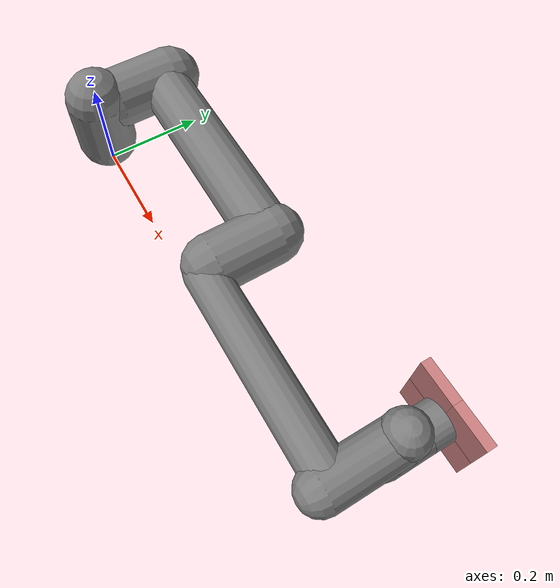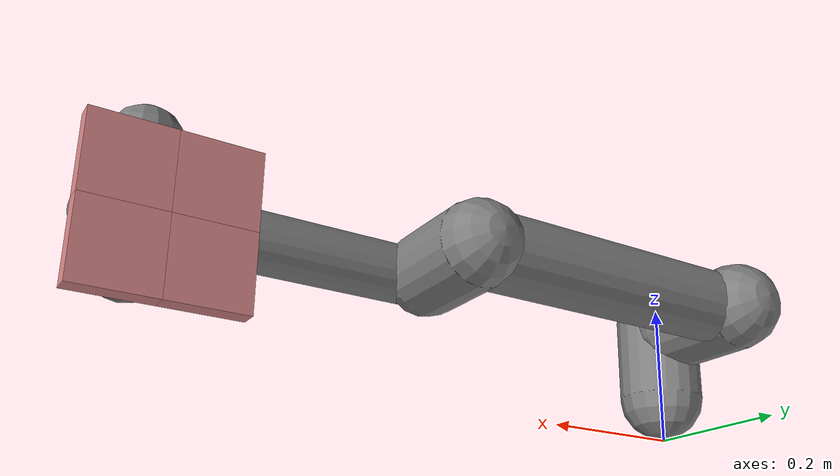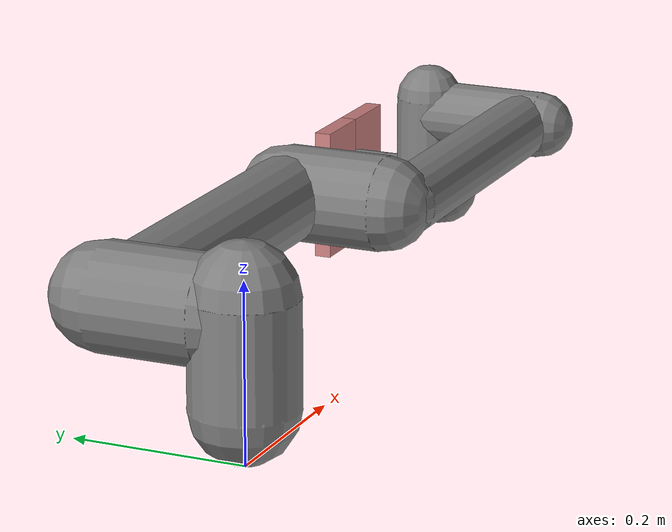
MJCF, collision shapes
<mujoco model="ur5e">
  <compiler angle="radian" autolimits="true"/>

  <option integrator="implicitfast"/>

  <default>
    <default class="ur5e">
      <default class="visual">
        <geom type="mesh" contype="0" conaffinity="0" group="2"/>
      </default>
      <default class="mesh/gripper/collision">
        <geom type="capsule" group="3"/>
        <default class="eef_mesh/gripper/collision">
          <geom type="cylinder"/>
        </default>
      </default>
      <joint axis="0 1 0" range="-6.28319 6.28319"/>
      <default class="joint_limited">
        <joint range="-3.1415 3.1415"/>
      </default>
      <default class="position">
        <position ctrlrange="-6.2831 6.2831" kp="2000" kv="200" forcerange="-150 150"/>
        <default class="position_limited">
          <position ctrlrange="-3.1415 3.1415"/>
        </default>
        <default class="position_small">
          <position kp="500" kv="50" forcerange="-28 28"/>
        </default>
      </default>
    </default>
    <default class="2f140">
      <joint limited="true" damping="0.1" armature="0.001"/>

      <default class="2f140visual">
          <geom type="mesh" contype="0" conaffinity="0" group="2"/>
      </default>
      <default class="2f140collision">
          <geom type="mesh" group="3"/>
      </default>
    </default>
    <default class="active_adhesion">
      <geom rgba=".8 .5 .5 1" margin=".1" gap=".1"/>
    </default>
  </default>

  <asset>
    <material name="black" rgba="0.033 0.033 0.033 1"/>
    <material name="jointgray" rgba="0.278 0.278 0.278 1"/>
    <material name="linkgray" rgba="0.82 0.82 0.82 1"/>
    <material name="urblue" rgba="0.49 0.678 0.8 1"/>
    <material name="white" rgba="1 1 1 1"/>
    <material name="off_white" rgba="0.901961 0.921569 0.929412 1"/>
    <material name="dark_grey" rgba="0.25 0.25 0.25 1"/>
    <material name="green" rgba="0 1 0 1"/>
    <material name="light_blue" rgba="0.039216 0.541176 0.780392 1"/>
    <material name="metal" rgba="0.58 0.58 0.58 1"/>
    <material name="silicone" rgba="0.1882 0.1882 0.1882 1"/>
    <material name="gray" rgba="0.4627 0.4627 0.4627 1"/>
    <material name="light_gray" rgba="0.792156862745098 0.819607843137255 0.933333333333333 1"/>

    <mesh file="mesh/ur5e/base_0.obj"/>
    <mesh file="mesh/ur5e/base_1.obj"/>
    <mesh file="mesh/ur5e/shoulder_0.obj"/>
    <mesh file="mesh/ur5e/shoulder_1.obj"/>
    <mesh file="mesh/ur5e/shoulder_2.obj"/>
    <mesh file="mesh/ur5e/upperarm_0.obj"/>
    <mesh file="mesh/ur5e/upperarm_1.obj"/>
    <mesh file="mesh/ur5e/upperarm_2.obj"/>
    <mesh file="mesh/ur5e/upperarm_3.obj"/>
    <mesh file="mesh/ur5e/forearm_0.obj"/>
    <mesh file="mesh/ur5e/forearm_1.obj"/>
    <mesh file="mesh/ur5e/forearm_2.obj"/>
    <mesh file="mesh/ur5e/forearm_3.obj"/>
    <mesh file="mesh/ur5e/wrist1_0.obj"/>
    <mesh file="mesh/ur5e/wrist1_1.obj"/>
    <mesh file="mesh/ur5e/wrist1_2.obj"/>
    <mesh file="mesh/ur5e/wrist2_0.obj"/>
    <mesh file="mesh/ur5e/wrist2_1.obj"/>
    <mesh file="mesh/ur5e/wrist2_2.obj"/>
    <mesh file="mesh/ur5e/wrist3.obj"/>
  </asset>

  <worldbody>
     <body name="rail" pos="0 0 0">
      <body name="ur5e/base" pos="0 0 0" quat="1 0 0 0" childclass="ur5e">
        <inertial mass="4" pos="0 0 0" diaginertia="0.00443333156 0.00443333156 0.0072"/>
        <geom mesh="base_0" material="black" class="visual"/>
        <geom mesh="base_1" material="jointgray" class="visual"/>
        <body name="shoulder_link" pos="0 0 0.163">
          <inertial mass="3.7" pos="0 0 0" diaginertia="0.0102675 0.0102675 0.00666"/>
          <joint name="shoulder_pan_joint" axis="0 0 1"/>
          <site name="shoulder_pan_joint"/>
          <geom mesh="shoulder_0" material="urblue" class="visual"/>
          <geom mesh="shoulder_1" material="black" class="visual"/>
          <geom mesh="shoulder_2" material="jointgray" class="visual"/>
          <geom class="mesh/gripper/collision" size="0.06 0.06" pos="0 0 -0.04"/>
          <body name="upper_arm_link" pos="0 0.138 0" quat="1 0 1 0">
            <inertial mass="8.393" pos="0 0 0.2125" diaginertia="0.133886 0.133886 0.0151074"/>
            <joint name="shoulder_lift_joint"/>
            <site name="shoulder_lift_joint"/>
            <geom mesh="upperarm_0" material="linkgray" class="visual"/>
            <geom mesh="upperarm_1" material="black" class="visual"/>
            <geom mesh="upperarm_2" material="jointgray" class="visual"/>
            <geom mesh="upperarm_3" material="urblue" class="visual"/>
            <geom class="mesh/gripper/collision" pos="0 -0.04 0" quat="1 1 0 0" size="0.06 0.06"/>
            <geom class="mesh/gripper/collision" size="0.05 0.2" pos="0 0 0.2"/>
            <body name="forearm_link" pos="0 -0.131 0.425">
              <inertial mass="2.275" pos="0 0 0.196" diaginertia="0.0311796 0.0311796 0.004095"/>
              <joint name="elbow_joint" class="joint_limited"/>
              <site name="elbow_joint"/>
              <geom mesh="forearm_0" material="urblue" class="visual"/>
              <geom mesh="forearm_1" material="linkgray" class="visual"/>
              <geom mesh="forearm_2" material="black" class="visual"/>
              <geom mesh="forearm_3" material="jointgray" class="visual"/>
              <geom class="mesh/gripper/collision" pos="0 0.08 0" quat="1 1 0 0" size="0.055 0.06"/>
              <geom class="mesh/gripper/collision" size="0.038 0.19" pos="0 0 0.2"/>
              <body name="wrist_1_link" pos="0 0 0.392" quat="1 0 1 0">
                <inertial mass="1.219" pos="0 0.127 0" diaginertia="0.0025599 0.0025599 0.0021942"/>
                <joint name="wrist_1_joint"/>
                <site name="wrist_1_joint"/>
                <geom mesh="wrist1_0" material="black" class="visual"/>
                <geom mesh="wrist1_1" material="urblue" class="visual"/>
                <geom mesh="wrist1_2" material="jointgray" class="visual"/>
                <geom class="mesh/gripper/collision" pos="0 0.05 0" quat="1 1 0 0" size="0.04 0.07"/>
                <body name="wrist_2_link" pos="0 0.127 0">
                  <inertial mass="1.219" pos="0 0 0.1" diaginertia="0.0025599 0.0025599 0.0021942"/>
                  <joint name="wrist_2_joint" axis="0 0 1"/>
                  <site name="wrist_2_joint"/>
                  <geom mesh="wrist2_0" material="black" class="visual"/>
                  <geom mesh="wrist2_1" material="urblue" class="visual"/>
                  <geom mesh="wrist2_2" material="jointgray" class="visual"/>
                  <geom class="mesh/gripper/collision" size="0.04 0.06" pos="0 0 0.04"/>
                  <geom class="mesh/gripper/collision" pos="0 0.02 0.1" quat="1 1 0 0" size="0.04 0.04"/>
                  <body name="wrist_3_link" pos="0 0 0.1">
                    <inertial mass="0.1879" pos="0 0.0771683 0" quat="1 0 0 1"
                      diaginertia="0.000132134 9.90863e-05 9.90863e-05"/>
                    <joint name="wrist_3_joint"/>
                    <site name="wrist_3_joint"/>
                    <geom material="linkgray" mesh="wrist3" class="visual"/>
                    <geom class="eef_mesh/gripper/collision" pos="0 0.08 0" quat="1 1 0 0" size="0.04 0.02"/>
                    <body name="attachment" pos="0 0.1 0" quat="-1 1 1 1">
                      <site name="attachment_site" rgba="1 0 0 1" size="0.01" group="1"/>
                      <body name="vacuum_gripper" pos="0 0 0">
                        <body name="suction_pad" pos="0 0 0.01" childclass="active_adhesion">
                          <geom name="suction_surface_1" type="box" pos="0.04 0.04 0.0" size="0.04 0.04 0.01" material="gray" friction="2.5 0.3 0.05" solimp="0.95 0.99 0.0001" solref="0.005 4"/>
                          <geom name="suction_surface_2" type="box" pos="-0.04 0.04 0.0" size="0.04 0.04 0.01" material="gray" friction="2.5 0.3 0.05" solimp="0.95 0.99 0.0001" solref="0.005 4"/>
                          <geom name="suction_surface_3" type="box" pos="-0.04 -0.04 0.0" size="0.04 0.04 0.01" material="gray" friction="2.5 0.3 0.05" solimp="0.95 0.99 0.0001" solref="0.005 4"/>
                          <geom name="suction_surface_4" type="box" pos="0.04 -0.04 0.0" size="0.04 0.04 0.01" material="gray" friction="2.5 0.3 0.05" solimp="0.95 0.99 0.0001" solref="0.005 4"/>
                        </body>
                      </body>
                    </body>
                  </body>
                </body>
              </body>
            </body>
          </body>
        </body>
      </body>
    </body>
  </worldbody>

  <actuator>
    <position class="position" name="shoulder_pan_position" joint="shoulder_pan_joint"/>
    <position class="position" name="shoulder_lift_position" joint="shoulder_lift_joint"/>
    <position class="position_limited" name="elbow_position" joint="elbow_joint"/>
    <position class="position_small" name="wrist_1_position" joint="wrist_1_joint"/>
    <position class="position_small" name="wrist_2_position" joint="wrist_2_joint"/>
    <position class="position_small" name="wrist_3_position" joint="wrist_3_joint"/>
    <adhesion name="suction" body="suction_pad" ctrlrange="0 1" gain="100"/>
  </actuator>

</mujoco>
